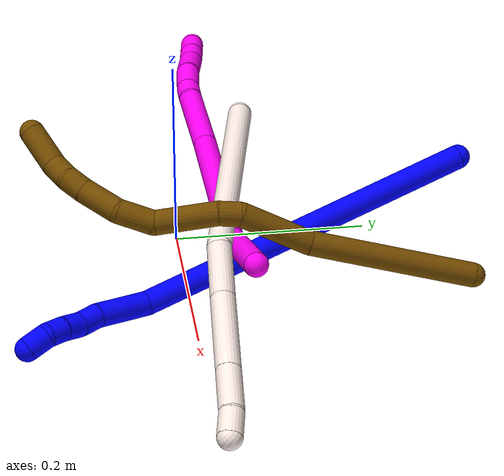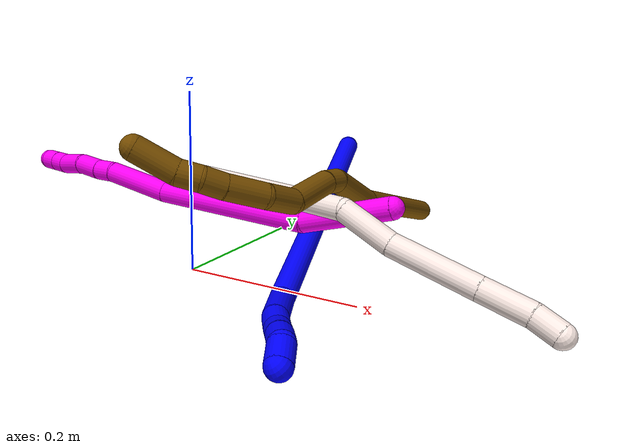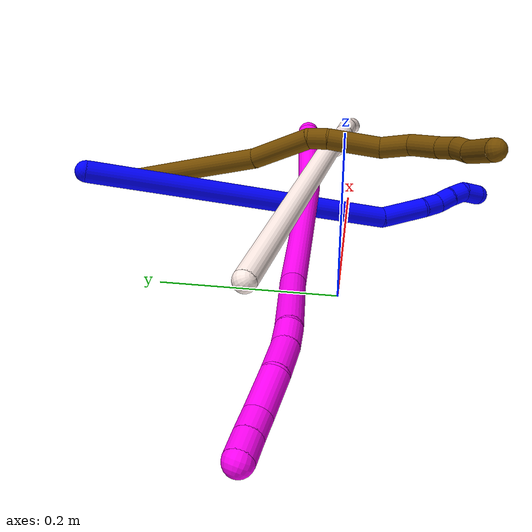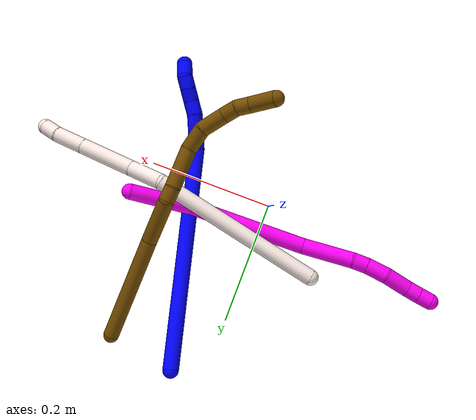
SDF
<sdf version="1.7">
 <world name="default">
  <model name="photoneo_s_sensor">
   <static>1</static>
   <pose>0 0 2 1.57079 1.57079 3.14159</pose>
   <link name="link">
    <inertial><mass>0.1</mass></inertial>
    <sensor name="sensor" type="depth">
     <update_rate>30</update_rate>
     <camera>
      <horizontal_fov>1.22</horizontal_fov>
      <image><width>1920</width><height>1200</height><format>B8G8R8</format></image>
      <clip><near>0.1</near><far>4</far></clip>
      <depth_camera><output>points</output></depth_camera>
     </camera>
     <plugin name="camera_plugin" filename="libgazebo_ros_depth_camera.so">
      <baseline>0.2</baseline>
      <alwaysOn>1</alwaysOn>
      <updateRate>0.0</updateRate>
      <cameraName>camera_ir</cameraName>
      <imageTopicName>/camera/color/image_raw</imageTopicName>
      <cameraInfoTopicName>/camera/color/camera_info</cameraInfoTopicName>
      <depthImageTopicName>/camera/depth/image_raw</depthImageTopicName>
      <depthImageCameraInfoTopicName>/camera/depth/camera_info</depthImageCameraInfoTopicName>
      <pointCloudTopicName>/camera/depth/points</pointCloudTopicName>
      <frameName>fr_optical</frameName>
      <pointCloudCutoff>0.1</pointCloudCutoff>
      <pointCloudCutoffMax>2.0</pointCloudCutoffMax>
      <distortionK1>0</distortionK1>
      <distortionK2>0</distortionK2>
      <distortionK3>0</distortionK3>
      <distortionT1>0</distortionT1>
      <distortionT2>0</distortionT2>
      <CxPrime>0</CxPrime>
      <Cx>0</Cx>
      <Cy>0</Cy>
      <focalLength>0</focalLength>
      <hackBaseline>0</hackBaseline>
     </plugin>
    </sensor>
   </link>
  </model>
  <model name="bin">
   <static>1</static>
   <link name="bottom">
    <collision name="collision-bottom">
     <pose>0 0 -0.01 0 -0 0</pose>
     <geometry><box><size>0.8 0.6 0.02</size></box></geometry>
     <surface>
      <friction><ode><mu>100</mu><mu2>100</mu2></ode></friction>
      <contact><collide_bitmask>65535</collide_bitmask></contact>
     </surface>
    </collision>
   </link>
   <link name="west_wall">
    <collision name="collision-west_wall">
     <pose>-0.41 0 0.1 0 -0 0</pose>
     <geometry><box><size>0.02 0.6 0.2</size></box></geometry>
     <surface>
      <friction><ode><mu>100</mu><mu2>100</mu2></ode></friction>
      <contact><collide_bitmask>65535</collide_bitmask></contact>
     </surface>
    </collision>
   </link>
   <link name="east_wall">
    <collision name="collision-east_wall">
     <pose>0.41 0 0.1 0 -0 0</pose>
     <geometry><box><size>0.02 0.6 0.2</size></box></geometry>
     <surface>
      <friction><ode><mu>100</mu><mu2>100</mu2></ode></friction>
      <contact><collide_bitmask>65535</collide_bitmask></contact>
     </surface>
    </collision>
   </link>
   <link name="south_wall">
    <collision name="collision-south_wall">
     <pose>0 -0.31 0.1 0 -0 0</pose>
     <geometry><box><size>0.8 0.02 0.2</size></box></geometry>
     <surface>
      <friction><ode><mu>100</mu><mu2>100</mu2></ode></friction>
      <contact><collide_bitmask>65535</collide_bitmask></contact>
     </surface>
    </collision>
   </link>
   <link name="north_wall">
    <collision name="collision-north_wall">
     <pose>0 0.31 0.1 0 -0 0</pose>
     <geometry><box><size>0.8 0.02 0.2</size></box></geometry>
     <surface>
      <friction><ode><mu>100</mu><mu2>100</mu2></ode></friction>
      <contact><collide_bitmask>65535</collide_bitmask></contact>
     </surface>
    </collision>
   </link>
  </model>
  <model name="1">
   <static>0</static>
   <link name="1">
    <collision name="collision-cylinder-e_1_1_4">
     <pose>0.021454 -0.176658 0.013399 1.49509 0.120507 0.111732</pose>
     <geometry><cylinder><radius>0.0125</radius><length>0.35692</length></cylinder></geometry>
     <surface>
      <friction><ode><mu>1.16</mu><mu2>1.16</mu2><slip1>0</slip1><slip2>0</slip2></ode></friction>
      <contact><ode><kp>1e+06</kp><kd>1</kd><max_vel>0</max_vel><min_depth>0.001</min_depth></ode></contact>
     </surface>
    </collision>
    <visual name="visual-cylinder-e_1_1_4">
     <pose>0.021454 -0.176658 0.013399 1.49509 0.120507 0.111732</pose>
     <geometry><cylinder><radius>0.0125</radius><length>0.35692</length></cylinder></geometry>
     <material><ambient>0 0 1 1</ambient></material>
    </visual>
    <collision name="collision-cylinder-e_2_4_5">
     <pose>0.054496 -0.377655 0.034393 1.26837 0.426615 0.315985</pose>
     <geometry><cylinder><radius>0.0125</radius><length>0.056012</length></cylinder></geometry>
     <surface>
      <friction><ode><mu>1.16</mu><mu2>1.16</mu2><slip1>0</slip1><slip2>0</slip2></ode></friction>
      <contact><ode><kp>1e+06</kp><kd>1</kd><max_vel>0</max_vel><min_depth>0.001</min_depth></ode></contact>
     </surface>
    </collision>
    <visual name="visual-cylinder-e_2_4_5">
     <pose>0.054496 -0.377655 0.034393 1.26837 0.426615 0.315985</pose>
     <geometry><cylinder><radius>0.0125</radius><length>0.056012</length></cylinder></geometry>
     <material><ambient>0 0 1 1</ambient></material>
    </visual>
    <collision name="collision-cylinder-e_3_5_6">
     <pose>0.071962 -0.411629 0.042838 1.48263 0.546025 0.501884</pose>
     <geometry><cylinder><radius>0.0125</radius><length>0.022635</length></cylinder></geometry>
     <surface>
      <friction><ode><mu>1.16</mu><mu2>1.16</mu2><slip1>0</slip1><slip2>0</slip2></ode></friction>
      <contact><ode><kp>1e+06</kp><kd>1</kd><max_vel>0</max_vel><min_depth>0.001</min_depth></ode></contact>
     </surface>
    </collision>
    <visual name="visual-cylinder-e_3_5_6">
     <pose>0.071962 -0.411629 0.042838 1.48263 0.546025 0.501884</pose>
     <geometry><cylinder><radius>0.0125</radius><length>0.022635</length></cylinder></geometry>
     <material><ambient>0 0 1 1</ambient></material>
    </visual>
    <collision name="collision-cylinder-e_4_6_7">
     <pose>0.084239 -0.429139 0.046351 1.24488 0.656021 0.47903</pose>
     <geometry><cylinder><radius>0.0125</radius><length>0.020984</length></cylinder></geometry>
     <surface>
      <friction><ode><mu>1.16</mu><mu2>1.16</mu2><slip1>0</slip1><slip2>0</slip2></ode></friction>
      <contact><ode><kp>1e+06</kp><kd>1</kd><max_vel>0</max_vel><min_depth>0.001</min_depth></ode></contact>
     </surface>
    </collision>
    <visual name="visual-cylinder-e_4_6_7">
     <pose>0.084239 -0.429139 0.046351 1.24488 0.656021 0.47903</pose>
     <geometry><cylinder><radius>0.0125</radius><length>0.020984</length></cylinder></geometry>
     <material><ambient>0 0 1 1</ambient></material>
    </visual>
    <collision name="collision-cylinder-e_5_7_8">
     <pose>0.096273 -0.445211 0.050552 1.38517 0.594268 0.497574</pose>
     <geometry><cylinder><radius>0.0125</radius><length>0.020128</length></cylinder></geometry>
     <surface>
      <friction><ode><mu>1.16</mu><mu2>1.16</mu2><slip1>0</slip1><slip2>0</slip2></ode></friction>
      <contact><ode><kp>1e+06</kp><kd>1</kd><max_vel>0</max_vel><min_depth>0.001</min_depth></ode></contact>
     </surface>
    </collision>
    <visual name="visual-cylinder-e_5_7_8">
     <pose>0.096273 -0.445211 0.050552 1.38517 0.594268 0.497574</pose>
     <geometry><cylinder><radius>0.0125</radius><length>0.020128</length></cylinder></geometry>
     <material><ambient>0 0 1 1</ambient></material>
    </visual>
    <collision name="collision-cylinder-e_6_8_2">
     <pose>0.104071 -0.464807 0.05094 1.67141 0.186524 0.20617</pose>
     <geometry><cylinder><radius>0.0125</radius><length>0.023321</length></cylinder></geometry>
     <surface>
      <friction><ode><mu>1.16</mu><mu2>1.16</mu2><slip1>0</slip1><slip2>0</slip2></ode></friction>
      <contact><ode><kp>1e+06</kp><kd>1</kd><max_vel>0</max_vel><min_depth>0.001</min_depth></ode></contact>
     </surface>
    </collision>
    <visual name="visual-cylinder-e_6_8_2">
     <pose>0.104071 -0.464807 0.05094 1.67141 0.186524 0.20617</pose>
     <geometry><cylinder><radius>0.0125</radius><length>0.023321</length></cylinder></geometry>
     <material><ambient>0 0 1 1</ambient></material>
    </visual>
    <collision name="collision-sphere-2">
     <pose>0.106233 -0.476207 0.04979 0 -0 0</pose>
     <geometry><sphere><radius>0.0125</radius></sphere></geometry>
     <surface>
      <friction><ode><mu>1.16</mu><mu2>1.16</mu2><slip1>0</slip1><slip2>0</slip2></ode></friction>
      <contact><ode><kp>1e+06</kp><kd>1</kd><max_vel>0</max_vel><min_depth>0.001</min_depth></ode></contact>
     </surface>
    </collision>
    <visual name="visual-sphere-2">
     <pose>0.106233 -0.476207 0.04979 0 -0 0</pose>
     <geometry><sphere><radius>0.0125</radius></sphere></geometry>
     <material><ambient>0 0 1 1</ambient></material>
    </visual>
    <collision name="collision-sphere-4">
     <pose>0.042907 -0.353316 0.026799 0 -0 0</pose>
     <geometry><sphere><radius>0.0125</radius></sphere></geometry>
     <surface>
      <friction><ode><mu>1.16</mu><mu2>1.16</mu2><slip1>0</slip1><slip2>0</slip2></ode></friction>
      <contact><ode><kp>1e+06</kp><kd>1</kd><max_vel>0</max_vel><min_depth>0.001</min_depth></ode></contact>
     </surface>
    </collision>
    <visual name="visual-sphere-4">
     <pose>0.042907 -0.353316 0.026799 0 -0 0</pose>
     <geometry><sphere><radius>0.0125</radius></sphere></geometry>
     <material><ambient>0 0 1 1</ambient></material>
    </visual>
    <collision name="collision-sphere-1">
     <geometry><sphere><radius>0.0125</radius></sphere></geometry>
     <surface>
      <friction><ode><mu>1.16</mu><mu2>1.16</mu2><slip1>0</slip1><slip2>0</slip2></ode></friction>
      <contact><ode><kp>1e+06</kp><kd>1</kd><max_vel>0</max_vel><min_depth>0.001</min_depth></ode></contact>
     </surface>
    </collision>
    <visual name="visual-sphere-1">
     <geometry><sphere><radius>0.0125</radius></sphere></geometry>
     <material><ambient>0 0 1 1</ambient></material>
    </visual>
    <collision name="collision-sphere-8">
     <pose>0.101908 -0.453406 0.052091 0 -0 0</pose>
     <geometry><sphere><radius>0.0125</radius></sphere></geometry>
     <surface>
      <friction><ode><mu>1.16</mu><mu2>1.16</mu2><slip1>0</slip1><slip2>0</slip2></ode></friction>
      <contact><ode><kp>1e+06</kp><kd>1</kd><max_vel>0</max_vel><min_depth>0.001</min_depth></ode></contact>
     </surface>
    </collision>
    <visual name="visual-sphere-8">
     <pose>0.101908 -0.453406 0.052091 0 -0 0</pose>
     <geometry><sphere><radius>0.0125</radius></sphere></geometry>
     <material><ambient>0 0 1 1</ambient></material>
    </visual>
    <collision name="collision-sphere-5">
     <pose>0.066085 -0.401994 0.041986 0 -0 0</pose>
     <geometry><sphere><radius>0.0125</radius></sphere></geometry>
     <surface>
      <friction><ode><mu>1.16</mu><mu2>1.16</mu2><slip1>0</slip1><slip2>0</slip2></ode></friction>
      <contact><ode><kp>1e+06</kp><kd>1</kd><max_vel>0</max_vel><min_depth>0.001</min_depth></ode></contact>
     </surface>
    </collision>
    <visual name="visual-sphere-5">
     <pose>0.066085 -0.401994 0.041986 0 -0 0</pose>
     <geometry><sphere><radius>0.0125</radius></sphere></geometry>
     <material><ambient>0 0 1 1</ambient></material>
    </visual>
    <collision name="collision-sphere-6">
     <pose>0.077839 -0.421263 0.04369 0 -0 0</pose>
     <geometry><sphere><radius>0.0125</radius></sphere></geometry>
     <surface>
      <friction><ode><mu>1.16</mu><mu2>1.16</mu2><slip1>0</slip1><slip2>0</slip2></ode></friction>
      <contact><ode><kp>1e+06</kp><kd>1</kd><max_vel>0</max_vel><min_depth>0.001</min_depth></ode></contact>
     </surface>
    </collision>
    <visual name="visual-sphere-6">
     <pose>0.077839 -0.421263 0.04369 0 -0 0</pose>
     <geometry><sphere><radius>0.0125</radius></sphere></geometry>
     <material><ambient>0 0 1 1</ambient></material>
    </visual>
    <collision name="collision-sphere-7">
     <pose>0.090638 -0.437016 0.049013 0 -0 0</pose>
     <geometry><sphere><radius>0.0125</radius></sphere></geometry>
     <surface>
      <friction><ode><mu>1.16</mu><mu2>1.16</mu2><slip1>0</slip1><slip2>0</slip2></ode></friction>
      <contact><ode><kp>1e+06</kp><kd>1</kd><max_vel>0</max_vel><min_depth>0.001</min_depth></ode></contact>
     </surface>
    </collision>
    <visual name="visual-sphere-7">
     <pose>0.090638 -0.437016 0.049013 0 -0 0</pose>
     <geometry><sphere><radius>0.0125</radius></sphere></geometry>
     <material><ambient>0 0 1 1</ambient></material>
    </visual>
    <inertial>
     <pose>0.036942 -0.244659 0.021713 0 -0 0</pose>
     <mass>0.5</mass>
     <inertia>
      <ixx>0.004208</ixx>
      <ixy>0</ixy>
      <ixz>0</ixz>
      <iyy>0.000736</iyy>
      <iyz>0</iyz>
      <izz>0.003322</izz>
     </inertia>
    </inertial>
   </link>
   <pose>0.054432 0.287639 0.106319 0.447075 -0.473723 -0.028666</pose>
  </model>
  <model name="10">
   <static>0</static>
   <link name="10">
    <collision name="collision-cylinder-e_1_1_4">
     <pose>-0.023263 0.00524 0.044084 -0.11832 -0.482673 0.029155</pose>
     <geometry><cylinder><radius>0.0125</radius><length>0.10024</length></cylinder></geometry>
     <surface>
      <friction><ode><mu>1.16</mu><mu2>1.16</mu2><slip1>0</slip1><slip2>0</slip2></ode></friction>
      <contact><ode><kp>1e+06</kp><kd>1</kd><max_vel>0</max_vel><min_depth>0.001</min_depth></ode></contact>
     </surface>
    </collision>
    <visual name="visual-cylinder-e_1_1_4">
     <pose>-0.023263 0.00524 0.044084 -0.11832 -0.482673 0.029155</pose>
     <geometry><cylinder><radius>0.0125</radius><length>0.10024</length></cylinder></geometry>
     <material><ambient>1 0 0.964706 1</ambient></material>
    </visual>
    <collision name="collision-cylinder-e_2_4_5">
     <pose>-0.105029 -0.0033 0.158284 0.194067 -0.686044 -0.069499</pose>
     <geometry><cylinder><radius>0.0125</radius><length>0.184704</length></cylinder></geometry>
     <surface>
      <friction><ode><mu>1.16</mu><mu2>1.16</mu2><slip1>0</slip1><slip2>0</slip2></ode></friction>
      <contact><ode><kp>1e+06</kp><kd>1</kd><max_vel>0</max_vel><min_depth>0.001</min_depth></ode></contact>
     </surface>
    </collision>
    <visual name="visual-cylinder-e_2_4_5">
     <pose>-0.105029 -0.0033 0.158284 0.194067 -0.686044 -0.069499</pose>
     <geometry><cylinder><radius>0.0125</radius><length>0.184704</length></cylinder></geometry>
     <material><ambient>1 0 0.964706 1</ambient></material>
    </visual>
    <collision name="collision-cylinder-e_3_5_6">
     <pose>-0.193345 -0.024444 0.25369 0.283324 -0.847179 -0.128431</pose>
     <geometry><cylinder><radius>0.0125</radius><length>0.079562</length></cylinder></geometry>
     <surface>
      <friction><ode><mu>1.16</mu><mu2>1.16</mu2><slip1>0</slip1><slip2>0</slip2></ode></friction>
      <contact><ode><kp>1e+06</kp><kd>1</kd><max_vel>0</max_vel><min_depth>0.001</min_depth></ode></contact>
     </surface>
    </collision>
    <visual name="visual-cylinder-e_3_5_6">
     <pose>-0.193345 -0.024444 0.25369 0.283324 -0.847179 -0.128431</pose>
     <geometry><cylinder><radius>0.0125</radius><length>0.079562</length></cylinder></geometry>
     <material><ambient>1 0 0.964706 1</ambient></material>
    </visual>
    <collision name="collision-cylinder-e_4_6_7">
     <pose>-0.229979 -0.033498 0.287941 0.186524 -0.642173 -0.062197</pose>
     <geometry><cylinder><radius>0.0125</radius><length>0.022778</length></cylinder></geometry>
     <surface>
      <friction><ode><mu>1.16</mu><mu2>1.16</mu2><slip1>0</slip1><slip2>0</slip2></ode></friction>
      <contact><ode><kp>1e+06</kp><kd>1</kd><max_vel>0</max_vel><min_depth>0.001</min_depth></ode></contact>
     </surface>
    </collision>
    <visual name="visual-cylinder-e_4_6_7">
     <pose>-0.229979 -0.033498 0.287941 0.186524 -0.642173 -0.062197</pose>
     <geometry><cylinder><radius>0.0125</radius><length>0.022778</length></cylinder></geometry>
     <material><ambient>1 0 0.964706 1</ambient></material>
    </visual>
    <collision name="collision-cylinder-e_5_7_8">
     <pose>-0.246643 -0.039837 0.309541 0.352429 -0.63116 -0.11614</pose>
     <geometry><cylinder><radius>0.0125</radius><length>0.033358</length></cylinder></geometry>
     <surface>
      <friction><ode><mu>1.16</mu><mu2>1.16</mu2><slip1>0</slip1><slip2>0</slip2></ode></friction>
      <contact><ode><kp>1e+06</kp><kd>1</kd><max_vel>0</max_vel><min_depth>0.001</min_depth></ode></contact>
     </surface>
    </collision>
    <visual name="visual-cylinder-e_5_7_8">
     <pose>-0.246643 -0.039837 0.309541 0.352429 -0.63116 -0.11614</pose>
     <geometry><cylinder><radius>0.0125</radius><length>0.033358</length></cylinder></geometry>
     <material><ambient>1 0 0.964706 1</ambient></material>
    </visual>
    <collision name="collision-cylinder-e_6_8_9">
     <pose>-0.264052 -0.048797 0.339308 0.246601 -0.404785 -0.05085</pose>
     <geometry><cylinder><radius>0.0125</radius><length>0.038433</length></cylinder></geometry>
     <surface>
      <friction><ode><mu>1.16</mu><mu2>1.16</mu2><slip1>0</slip1><slip2>0</slip2></ode></friction>
      <contact><ode><kp>1e+06</kp><kd>1</kd><max_vel>0</max_vel><min_depth>0.001</min_depth></ode></contact>
     </surface>
    </collision>
    <visual name="visual-cylinder-e_6_8_9">
     <pose>-0.264052 -0.048797 0.339308 0.246601 -0.404785 -0.05085</pose>
     <geometry><cylinder><radius>0.0125</radius><length>0.038433</length></cylinder></geometry>
     <material><ambient>1 0 0.964706 1</ambient></material>
    </visual>
    <collision name="collision-cylinder-e_7_9_10">
     <pose>-0.276839 -0.056022 0.364617 0.342106 -0.541197 -0.095765</pose>
     <geometry><cylinder><radius>0.0125</radius><length>0.02026</length></cylinder></geometry>
     <surface>
      <friction><ode><mu>1.16</mu><mu2>1.16</mu2><slip1>0</slip1><slip2>0</slip2></ode></friction>
      <contact><ode><kp>1e+06</kp><kd>1</kd><max_vel>0</max_vel><min_depth>0.001</min_depth></ode></contact>
     </surface>
    </collision>
    <visual name="visual-cylinder-e_7_9_10">
     <pose>-0.276839 -0.056022 0.364617 0.342106 -0.541197 -0.095765</pose>
     <geometry><cylinder><radius>0.0125</radius><length>0.02026</length></cylinder></geometry>
     <material><ambient>1 0 0.964706 1</ambient></material>
    </visual>
    <collision name="collision-cylinder-e_8_10_2">
     <pose>-0.287518 -0.061734 0.381109 0.324827 -0.556815 -0.093602</pose>
     <geometry><cylinder><radius>0.0125</radius><length>0.020664</length></cylinder></geometry>
     <surface>
      <friction><ode><mu>1.16</mu><mu2>1.16</mu2><slip1>0</slip1><slip2>0</slip2></ode></friction>
      <contact><ode><kp>1e+06</kp><kd>1</kd><max_vel>0</max_vel><min_depth>0.001</min_depth></ode></contact>
     </surface>
    </collision>
    <visual name="visual-cylinder-e_8_10_2">
     <pose>-0.287518 -0.061734 0.381109 0.324827 -0.556815 -0.093602</pose>
     <geometry><cylinder><radius>0.0125</radius><length>0.020664</length></cylinder></geometry>
     <material><ambient>1 0 0.964706 1</ambient></material>
    </visual>
    <collision name="collision-sphere-2">
     <pose>-0.292978 -0.064533 0.389422 0 -0 0</pose>
     <geometry><sphere><radius>0.0125</radius></sphere></geometry>
     <surface>
      <friction><ode><mu>1.16</mu><mu2>1.16</mu2><slip1>0</slip1><slip2>0</slip2></ode></friction>
      <contact><ode><kp>1e+06</kp><kd>1</kd><max_vel>0</max_vel><min_depth>0.001</min_depth></ode></contact>
     </surface>
    </collision>
    <visual name="visual-sphere-2">
     <pose>-0.292978 -0.064533 0.389422 0 -0 0</pose>
     <geometry><sphere><radius>0.0125</radius></sphere></geometry>
     <material><ambient>1 0 0.964706 1</ambient></material>
    </visual>
    <collision name="collision-sphere-10">
     <pose>-0.282058 -0.058935 0.372796 0 -0 0</pose>
     <geometry><sphere><radius>0.0125</radius></sphere></geometry>
     <surface>
      <friction><ode><mu>1.16</mu><mu2>1.16</mu2><slip1>0</slip1><slip2>0</slip2></ode></friction>
      <contact><ode><kp>1e+06</kp><kd>1</kd><max_vel>0</max_vel><min_depth>0.001</min_depth></ode></contact>
     </surface>
    </collision>
    <visual name="visual-sphere-10">
     <pose>-0.282058 -0.058935 0.372796 0 -0 0</pose>
     <geometry><sphere><radius>0.0125</radius></sphere></geometry>
     <material><ambient>1 0 0.964706 1</ambient></material>
    </visual>
    <collision name="collision-sphere-9">
     <pose>-0.27162 -0.053109 0.356438 0 -0 0</pose>
     <geometry><sphere><radius>0.0125</radius></sphere></geometry>
     <surface>
      <friction><ode><mu>1.16</mu><mu2>1.16</mu2><slip1>0</slip1><slip2>0</slip2></ode></friction>
      <contact><ode><kp>1e+06</kp><kd>1</kd><max_vel>0</max_vel><min_depth>0.001</min_depth></ode></contact>
     </surface>
    </collision>
    <visual name="visual-sphere-9">
     <pose>-0.27162 -0.053109 0.356438 0 -0 0</pose>
     <geometry><sphere><radius>0.0125</radius></sphere></geometry>
     <material><ambient>1 0 0.964706 1</ambient></material>
    </visual>
    <collision name="collision-sphere-4">
     <pose>-0.046526 0.010481 0.088167 0 -0 0</pose>
     <geometry><sphere><radius>0.0125</radius></sphere></geometry>
     <surface>
      <friction><ode><mu>1.16</mu><mu2>1.16</mu2><slip1>0</slip1><slip2>0</slip2></ode></friction>
      <contact><ode><kp>1e+06</kp><kd>1</kd><max_vel>0</max_vel><min_depth>0.001</min_depth></ode></contact>
     </surface>
    </collision>
    <visual name="visual-sphere-4">
     <pose>-0.046526 0.010481 0.088167 0 -0 0</pose>
     <geometry><sphere><radius>0.0125</radius></sphere></geometry>
     <material><ambient>1 0 0.964706 1</ambient></material>
    </visual>
    <collision name="collision-sphere-1">
     <geometry><sphere><radius>0.0125</radius></sphere></geometry>
     <surface>
      <friction><ode><mu>1.16</mu><mu2>1.16</mu2><slip1>0</slip1><slip2>0</slip2></ode></friction>
      <contact><ode><kp>1e+06</kp><kd>1</kd><max_vel>0</max_vel><min_depth>0.001</min_depth></ode></contact>
     </surface>
    </collision>
    <visual name="visual-sphere-1">
     <geometry><sphere><radius>0.0125</radius></sphere></geometry>
     <material><ambient>1 0 0.964706 1</ambient></material>
    </visual>
    <collision name="collision-sphere-8">
     <pose>-0.256485 -0.044485 0.322179 0 -0 0</pose>
     <geometry><sphere><radius>0.0125</radius></sphere></geometry>
     <surface>
      <friction><ode><mu>1.16</mu><mu2>1.16</mu2><slip1>0</slip1><slip2>0</slip2></ode></friction>
      <contact><ode><kp>1e+06</kp><kd>1</kd><max_vel>0</max_vel><min_depth>0.001</min_depth></ode></contact>
     </surface>
    </collision>
    <visual name="visual-sphere-8">
     <pose>-0.256485 -0.044485 0.322179 0 -0 0</pose>
     <geometry><sphere><radius>0.0125</radius></sphere></geometry>
     <material><ambient>1 0 0.964706 1</ambient></material>
    </visual>
    <collision name="collision-sphere-5">
     <pose>-0.163533 -0.017081 0.228401 0 -0 0</pose>
     <geometry><sphere><radius>0.0125</radius></sphere></geometry>
     <surface>
      <friction><ode><mu>1.16</mu><mu2>1.16</mu2><slip1>0</slip1><slip2>0</slip2></ode></friction>
      <contact><ode><kp>1e+06</kp><kd>1</kd><max_vel>0</max_vel><min_depth>0.001</min_depth></ode></contact>
     </surface>
    </collision>
    <visual name="visual-sphere-5">
     <pose>-0.163533 -0.017081 0.228401 0 -0 0</pose>
     <geometry><sphere><radius>0.0125</radius></sphere></geometry>
     <material><ambient>1 0 0.964706 1</ambient></material>
    </visual>
    <collision name="collision-sphere-6">
     <pose>-0.223158 -0.031807 0.278979 0 -0 0</pose>
     <geometry><sphere><radius>0.0125</radius></sphere></geometry>
     <surface>
      <friction><ode><mu>1.16</mu><mu2>1.16</mu2><slip1>0</slip1><slip2>0</slip2></ode></friction>
      <contact><ode><kp>1e+06</kp><kd>1</kd><max_vel>0</max_vel><min_depth>0.001</min_depth></ode></contact>
     </surface>
    </collision>
    <visual name="visual-sphere-6">
     <pose>-0.223158 -0.031807 0.278979 0 -0 0</pose>
     <geometry><sphere><radius>0.0125</radius></sphere></geometry>
     <material><ambient>1 0 0.964706 1</ambient></material>
    </visual>
    <collision name="collision-sphere-7">
     <pose>-0.236801 -0.035189 0.296903 0 -0 0</pose>
     <geometry><sphere><radius>0.0125</radius></sphere></geometry>
     <surface>
      <friction><ode><mu>1.16</mu><mu2>1.16</mu2><slip1>0</slip1><slip2>0</slip2></ode></friction>
      <contact><ode><kp>1e+06</kp><kd>1</kd><max_vel>0</max_vel><min_depth>0.001</min_depth></ode></contact>
     </surface>
    </collision>
    <visual name="visual-sphere-7">
     <pose>-0.236801 -0.035189 0.296903 0 -0 0</pose>
     <geometry><sphere><radius>0.0125</radius></sphere></geometry>
     <material><ambient>1 0 0.964706 1</ambient></material>
    </visual>
    <inertial>
     <pose>-0.144558 -0.016814 0.198053 0 -0 0</pose>
     <mass>0.5</mass>
     <inertia>
      <ixx>0.000478</ixx>
      <ixy>0</ixy>
      <ixz>0</ixz>
      <iyy>0.000636</iyy>
      <iyz>0</iyz>
      <izz>0.000532</izz>
     </inertia>
    </inertial>
   </link>
   <pose>0.210406 0.055757 0.089082 -2.34967 0.664836 0.725027</pose>
  </model>
  <model name="11">
   <static>0</static>
   <link name="11">
    <collision name="collision-cylinder-e_1_1_4">
     <pose>0.127129 -0.046601 0.014864 1.26202 1.2035 0.9301</pose>
     <geometry><cylinder><radius>0.0125</radius><length>0.272429</length></cylinder></geometry>
     <surface>
      <friction><ode><mu>1.16</mu><mu2>1.16</mu2><slip1>0</slip1><slip2>0</slip2></ode></friction>
      <contact><ode><kp>1e+06</kp><kd>1</kd><max_vel>0</max_vel><min_depth>0.001</min_depth></ode></contact>
     </surface>
    </collision>
    <visual name="visual-cylinder-e_1_1_4">
     <pose>0.127129 -0.046601 0.014864 1.26202 1.2035 0.9301</pose>
     <geometry><cylinder><radius>0.0125</radius><length>0.272429</length></cylinder></geometry>
     <material><ambient>1 0.933333 0.909804 1</ambient></material>
    </visual>
    <collision name="collision-cylinder-e_2_4_5">
     <pose>0.279916 -0.095741 0.044058 0.175385 1.05485 0.102329</pose>
     <geometry><cylinder><radius>0.0125</radius><length>0.058994</length></cylinder></geometry>
     <surface>
      <friction><ode><mu>1.16</mu><mu2>1.16</mu2><slip1>0</slip1><slip2>0</slip2></ode></friction>
      <contact><ode><kp>1e+06</kp><kd>1</kd><max_vel>0</max_vel><min_depth>0.001</min_depth></ode></contact>
     </surface>
    </collision>
    <visual name="visual-cylinder-e_2_4_5">
     <pose>0.279916 -0.095741 0.044058 0.175385 1.05485 0.102329</pose>
     <geometry><cylinder><radius>0.0125</radius><length>0.058994</length></cylinder></geometry>
     <material><ambient>1 0.933333 0.909804 1</ambient></material>
    </visual>
    <collision name="collision-cylinder-e_3_5_6">
     <pose>0.346723 -0.109031 0.075652 0.556954 1.11174 0.351552</pose>
     <geometry><cylinder><radius>0.0125</radius><length>0.091803</length></cylinder></geometry>
     <surface>
      <friction><ode><mu>1.16</mu><mu2>1.16</mu2><slip1>0</slip1><slip2>0</slip2></ode></friction>
      <contact><ode><kp>1e+06</kp><kd>1</kd><max_vel>0</max_vel><min_depth>0.001</min_depth></ode></contact>
     </surface>
    </collision>
    <visual name="visual-cylinder-e_3_5_6">
     <pose>0.346723 -0.109031 0.075652 0.556954 1.11174 0.351552</pose>
     <geometry><cylinder><radius>0.0125</radius><length>0.091803</length></cylinder></geometry>
     <material><ambient>1 0.933333 0.909804 1</ambient></material>
    </visual>
    <collision name="collision-cylinder-e_4_6_7">
     <pose>0.410151 -0.125731 0.102166 0.571558 1.1123 0.361296</pose>
     <geometry><cylinder><radius>0.0125</radius><length>0.04969</length></cylinder></geometry>
     <surface>
      <friction><ode><mu>1.16</mu><mu2>1.16</mu2><slip1>0</slip1><slip2>0</slip2></ode></friction>
      <contact><ode><kp>1e+06</kp><kd>1</kd><max_vel>0</max_vel><min_depth>0.001</min_depth></ode></contact>
     </surface>
    </collision>
    <visual name="visual-cylinder-e_4_6_7">
     <pose>0.410151 -0.125731 0.102166 0.571558 1.1123 0.361296</pose>
     <geometry><cylinder><radius>0.0125</radius><length>0.04969</length></cylinder></geometry>
     <material><ambient>1 0.933333 0.909804 1</ambient></material>
    </visual>
    <collision name="collision-cylinder-e_5_7_2">
     <pose>0.44499 -0.132427 0.11642 0.148419 1.18776 0.100311</pose>
     <geometry><cylinder><radius>0.0125</radius><length>0.027084</length></cylinder></geometry>
     <surface>
      <friction><ode><mu>1.16</mu><mu2>1.16</mu2><slip1>0</slip1><slip2>0</slip2></ode></friction>
      <contact><ode><kp>1e+06</kp><kd>1</kd><max_vel>0</max_vel><min_depth>0.001</min_depth></ode></contact>
     </surface>
    </collision>
    <visual name="visual-cylinder-e_5_7_2">
     <pose>0.44499 -0.132427 0.11642 0.148419 1.18776 0.100311</pose>
     <geometry><cylinder><radius>0.0125</radius><length>0.027084</length></cylinder></geometry>
     <material><ambient>1 0.933333 0.909804 1</ambient></material>
    </visual>
    <collision name="collision-sphere-2">
     <pose>0.457551 -0.133176 0.121426 0 -0 0</pose>
     <geometry><sphere><radius>0.0125</radius></sphere></geometry>
     <surface>
      <friction><ode><mu>1.16</mu><mu2>1.16</mu2><slip1>0</slip1><slip2>0</slip2></ode></friction>
      <contact><ode><kp>1e+06</kp><kd>1</kd><max_vel>0</max_vel><min_depth>0.001</min_depth></ode></contact>
     </surface>
    </collision>
    <visual name="visual-sphere-2">
     <pose>0.457551 -0.133176 0.121426 0 -0 0</pose>
     <geometry><sphere><radius>0.0125</radius></sphere></geometry>
     <material><ambient>1 0.933333 0.909804 1</ambient></material>
    </visual>
    <collision name="collision-sphere-7">
     <pose>0.43243 -0.131679 0.111415 0 -0 0</pose>
     <geometry><sphere><radius>0.0125</radius></sphere></geometry>
     <surface>
      <friction><ode><mu>1.16</mu><mu2>1.16</mu2><slip1>0</slip1><slip2>0</slip2></ode></friction>
      <contact><ode><kp>1e+06</kp><kd>1</kd><max_vel>0</max_vel><min_depth>0.001</min_depth></ode></contact>
     </surface>
    </collision>
    <visual name="visual-sphere-7">
     <pose>0.43243 -0.131679 0.111415 0 -0 0</pose>
     <geometry><sphere><radius>0.0125</radius></sphere></geometry>
     <material><ambient>1 0.933333 0.909804 1</ambient></material>
    </visual>
    <collision name="collision-sphere-6">
     <pose>0.387872 -0.119782 0.092917 0 -0 0</pose>
     <geometry><sphere><radius>0.0125</radius></sphere></geometry>
     <surface>
      <friction><ode><mu>1.16</mu><mu2>1.16</mu2><slip1>0</slip1><slip2>0</slip2></ode></friction>
      <contact><ode><kp>1e+06</kp><kd>1</kd><max_vel>0</max_vel><min_depth>0.001</min_depth></ode></contact>
     </surface>
    </collision>
    <visual name="visual-sphere-6">
     <pose>0.387872 -0.119782 0.092917 0 -0 0</pose>
     <geometry><sphere><radius>0.0125</radius></sphere></geometry>
     <material><ambient>1 0.933333 0.909804 1</ambient></material>
    </visual>
    <collision name="collision-sphere-5">
     <pose>0.305573 -0.09828 0.058387 0 -0 0</pose>
     <geometry><sphere><radius>0.0125</radius></sphere></geometry>
     <surface>
      <friction><ode><mu>1.16</mu><mu2>1.16</mu2><slip1>0</slip1><slip2>0</slip2></ode></friction>
      <contact><ode><kp>1e+06</kp><kd>1</kd><max_vel>0</max_vel><min_depth>0.001</min_depth></ode></contact>
     </surface>
    </collision>
    <visual name="visual-sphere-5">
     <pose>0.305573 -0.09828 0.058387 0 -0 0</pose>
     <geometry><sphere><radius>0.0125</radius></sphere></geometry>
     <material><ambient>1 0.933333 0.909804 1</ambient></material>
    </visual>
    <collision name="collision-sphere-1">
     <geometry><sphere><radius>0.0125</radius></sphere></geometry>
     <surface>
      <friction><ode><mu>1.16</mu><mu2>1.16</mu2><slip1>0</slip1><slip2>0</slip2></ode></friction>
      <contact><ode><kp>1e+06</kp><kd>1</kd><max_vel>0</max_vel><min_depth>0.001</min_depth></ode></contact>
     </surface>
    </collision>
    <visual name="visual-sphere-1">
     <geometry><sphere><radius>0.0125</radius></sphere></geometry>
     <material><ambient>1 0.933333 0.909804 1</ambient></material>
    </visual>
    <collision name="collision-sphere-4">
     <pose>0.254258 -0.093201 0.029729 0 -0 0</pose>
     <geometry><sphere><radius>0.0125</radius></sphere></geometry>
     <surface>
      <friction><ode><mu>1.16</mu><mu2>1.16</mu2><slip1>0</slip1><slip2>0</slip2></ode></friction>
      <contact><ode><kp>1e+06</kp><kd>1</kd><max_vel>0</max_vel><min_depth>0.001</min_depth></ode></contact>
     </surface>
    </collision>
    <visual name="visual-sphere-4">
     <pose>0.254258 -0.093201 0.029729 0 -0 0</pose>
     <geometry><sphere><radius>0.0125</radius></sphere></geometry>
     <material><ambient>1 0.933333 0.909804 1</ambient></material>
    </visual>
    <inertial>
     <pose>0.230819 -0.076374 0.043647 0 -0 0</pose>
     <mass>0.5</mass>
     <inertia>
      <ixx>0.000945</ixx>
      <ixy>0</ixy>
      <ixz>0</ixz>
      <iyy>0.002107</iyy>
      <iyz>0</iyz>
      <izz>-0.001064</izz>
     </inertia>
    </inertial>
   </link>
   <pose>-0.095453 0.081208 0.094242 -2.36485 0.193247 -0.534213</pose>
  </model>
  <model name="12">
   <static>0</static>
   <link name="12">
    <collision name="collision-cylinder-e_1_1_4">
     <pose>-0.03983 -0.023508 -0.07305 2.83025 -0.478756 -1.99865</pose>
     <geometry><cylinder><radius>0.0125</radius><length>0.172919</length></cylinder></geometry>
     <surface>
      <friction><ode><mu>1.16</mu><mu2>1.16</mu2><slip1>0</slip1><slip2>0</slip2></ode></friction>
      <contact><ode><kp>1e+06</kp><kd>1</kd><max_vel>0</max_vel><min_depth>0.001</min_depth></ode></contact>
     </surface>
    </collision>
    <visual name="visual-cylinder-e_1_1_4">
     <pose>-0.03983 -0.023508 -0.07305 2.83025 -0.478756 -1.99865</pose>
     <geometry><cylinder><radius>0.0125</radius><length>0.172919</length></cylinder></geometry>
     <material><ambient>0.466667 0.301961 0 1</ambient></material>
    </visual>
    <collision name="collision-cylinder-e_2_4_5">
     <pose>-0.09606 -0.050023 -0.180202 3.05366 -0.446755 -2.75898</pose>
     <geometry><cylinder><radius>0.0125</radius><length>0.075922</length></cylinder></geometry>
     <surface>
      <friction><ode><mu>1.16</mu><mu2>1.16</mu2><slip1>0</slip1><slip2>0</slip2></ode></friction>
      <contact><ode><kp>1e+06</kp><kd>1</kd><max_vel>0</max_vel><min_depth>0.001</min_depth></ode></contact>
     </surface>
    </collision>
    <visual name="visual-cylinder-e_2_4_5">
     <pose>-0.09606 -0.050023 -0.180202 3.05366 -0.446755 -2.75898</pose>
     <geometry><cylinder><radius>0.0125</radius><length>0.075922</length></cylinder></geometry>
     <material><ambient>0.466667 0.301961 0 1</ambient></material>
    </visual>
    <collision name="collision-cylinder-e_3_5_6">
     <pose>-0.117108 -0.058207 -0.223339 2.62113 -0.419789 -1.34955</pose>
     <geometry><cylinder><radius>0.0125</radius><length>0.022805</length></cylinder></geometry>
     <surface>
      <friction><ode><mu>1.16</mu><mu2>1.16</mu2><slip1>0</slip1><slip2>0</slip2></ode></friction>
      <contact><ode><kp>1e+06</kp><kd>1</kd><max_vel>0</max_vel><min_depth>0.001</min_depth></ode></contact>
     </surface>
    </collision>
    <visual name="visual-cylinder-e_3_5_6">
     <pose>-0.117108 -0.058207 -0.223339 2.62113 -0.419789 -1.34955</pose>
     <geometry><cylinder><radius>0.0125</radius><length>0.022805</length></cylinder></geometry>
     <material><ambient>0.466667 0.301961 0 1</ambient></material>
    </visual>
    <collision name="collision-cylinder-e_4_6_7">
     <pose>-0.135331 -0.082591 -0.253551 2.40501 -0.443308 -1.05711</pose>
     <geometry><cylinder><radius>0.0125</radius><length>0.063299</length></cylinder></geometry>
     <surface>
      <friction><ode><mu>1.16</mu><mu2>1.16</mu2><slip1>0</slip1><slip2>0</slip2></ode></friction>
      <contact><ode><kp>1e+06</kp><kd>1</kd><max_vel>0</max_vel><min_depth>0.001</min_depth></ode></contact>
     </surface>
    </collision>
    <visual name="visual-cylinder-e_4_6_7">
     <pose>-0.135331 -0.082591 -0.253551 2.40501 -0.443308 -1.05711</pose>
     <geometry><cylinder><radius>0.0125</radius><length>0.063299</length></cylinder></geometry>
     <material><ambient>0.466667 0.301961 0 1</ambient></material>
    </visual>
    <collision name="collision-cylinder-e_5_7_8">
     <pose>-0.15399 -0.106593 -0.292104 2.87223 -0.274874 -1.59131</pose>
     <geometry><cylinder><radius>0.0125</radius><length>0.037455</length></cylinder></geometry>
     <surface>
      <friction><ode><mu>1.16</mu><mu2>1.16</mu2><slip1>0</slip1><slip2>0</slip2></ode></friction>
      <contact><ode><kp>1e+06</kp><kd>1</kd><max_vel>0</max_vel><min_depth>0.001</min_depth></ode></contact>
     </surface>
    </collision>
    <visual name="visual-cylinder-e_5_7_8">
     <pose>-0.15399 -0.106593 -0.292104 2.87223 -0.274874 -1.59131</pose>
     <geometry><cylinder><radius>0.0125</radius><length>0.037455</length></cylinder></geometry>
     <material><ambient>0.466667 0.301961 0 1</ambient></material>
    </visual>
    <collision name="collision-cylinder-e_6_8_9">
     <pose>-0.156624 -0.115847 -0.329174 2.91905 0.12065 0.991132</pose>
     <geometry><cylinder><radius>0.0125</radius><length>0.040683</length></cylinder></geometry>
     <surface>
      <friction><ode><mu>1.16</mu><mu2>1.16</mu2><slip1>0</slip1><slip2>0</slip2></ode></friction>
      <contact><ode><kp>1e+06</kp><kd>1</kd><max_vel>0</max_vel><min_depth>0.001</min_depth></ode></contact>
     </surface>
    </collision>
    <visual name="visual-cylinder-e_6_8_9">
     <pose>-0.156624 -0.115847 -0.329174 2.91905 0.12065 0.991132</pose>
     <geometry><cylinder><radius>0.0125</radius><length>0.040683</length></cylinder></geometry>
     <material><ambient>0.466667 0.301961 0 1</ambient></material>
    </visual>
    <collision name="collision-cylinder-e_7_9_10">
     <pose>-0.152651 -0.12173 -0.359754 3.01127 0.138011 1.62822</pose>
     <geometry><cylinder><radius>0.0125</radius><length>0.022165</length></cylinder></geometry>
     <surface>
      <friction><ode><mu>1.16</mu><mu2>1.16</mu2><slip1>0</slip1><slip2>0</slip2></ode></friction>
      <contact><ode><kp>1e+06</kp><kd>1</kd><max_vel>0</max_vel><min_depth>0.001</min_depth></ode></contact>
     </surface>
    </collision>
    <visual name="visual-cylinder-e_7_9_10">
     <pose>-0.152651 -0.12173 -0.359754 3.01127 0.138011 1.62822</pose>
     <geometry><cylinder><radius>0.0125</radius><length>0.022165</length></cylinder></geometry>
     <material><ambient>0.466667 0.301961 0 1</ambient></material>
    </visual>
    <collision name="collision-cylinder-e_8_10_11">
     <pose>-0.14646 -0.124687 -0.380544 2.9883 0.435747 2.47381</pose>
     <geometry><cylinder><radius>0.0125</radius><length>0.022114</length></cylinder></geometry>
     <surface>
      <friction><ode><mu>1.16</mu><mu2>1.16</mu2><slip1>0</slip1><slip2>0</slip2></ode></friction>
      <contact><ode><kp>1e+06</kp><kd>1</kd><max_vel>0</max_vel><min_depth>0.001</min_depth></ode></contact>
     </surface>
    </collision>
    <visual name="visual-cylinder-e_8_10_11">
     <pose>-0.14646 -0.124687 -0.380544 2.9883 0.435747 2.47381</pose>
     <geometry><cylinder><radius>0.0125</radius><length>0.022114</length></cylinder></geometry>
     <material><ambient>0.466667 0.301961 0 1</ambient></material>
    </visual>
    <collision name="collision-cylinder-e_9_11_2">
     <pose>-0.134166 -0.124115 -0.410247 -3.03578 0.365867 -2.58401</pose>
     <geometry><cylinder><radius>0.0125</radius><length>0.042638</length></cylinder></geometry>
     <surface>
      <friction><ode><mu>1.16</mu><mu2>1.16</mu2><slip1>0</slip1><slip2>0</slip2></ode></friction>
      <contact><ode><kp>1e+06</kp><kd>1</kd><max_vel>0</max_vel><min_depth>0.001</min_depth></ode></contact>
     </surface>
    </collision>
    <visual name="visual-cylinder-e_9_11_2">
     <pose>-0.134166 -0.124115 -0.410247 -3.03578 0.365867 -2.58401</pose>
     <geometry><cylinder><radius>0.0125</radius><length>0.042638</length></cylinder></geometry>
     <material><ambient>0.466667 0.301961 0 1</ambient></material>
    </visual>
    <collision name="collision-sphere-2">
     <pose>-0.126539 -0.122013 -0.430044 0 -0 0</pose>
     <geometry><sphere><radius>0.0125</radius></sphere></geometry>
     <surface>
      <friction><ode><mu>1.16</mu><mu2>1.16</mu2><slip1>0</slip1><slip2>0</slip2></ode></friction>
      <contact><ode><kp>1e+06</kp><kd>1</kd><max_vel>0</max_vel><min_depth>0.001</min_depth></ode></contact>
     </surface>
    </collision>
    <visual name="visual-sphere-2">
     <pose>-0.126539 -0.122013 -0.430044 0 -0 0</pose>
     <geometry><sphere><radius>0.0125</radius></sphere></geometry>
     <material><ambient>0.466667 0.301961 0 1</ambient></material>
    </visual>
    <collision name="collision-sphere-11">
     <pose>-0.141793 -0.126218 -0.39045 0 -0 0</pose>
     <geometry><sphere><radius>0.0125</radius></sphere></geometry>
     <surface>
      <friction><ode><mu>1.16</mu><mu2>1.16</mu2><slip1>0</slip1><slip2>0</slip2></ode></friction>
      <contact><ode><kp>1e+06</kp><kd>1</kd><max_vel>0</max_vel><min_depth>0.001</min_depth></ode></contact>
     </surface>
    </collision>
    <visual name="visual-sphere-11">
     <pose>-0.141793 -0.126218 -0.39045 0 -0 0</pose>
     <geometry><sphere><radius>0.0125</radius></sphere></geometry>
     <material><ambient>0.466667 0.301961 0 1</ambient></material>
    </visual>
    <collision name="collision-sphere-10">
     <pose>-0.151127 -0.123157 -0.370638 0 -0 0</pose>
     <geometry><sphere><radius>0.0125</radius></sphere></geometry>
     <surface>
      <friction><ode><mu>1.16</mu><mu2>1.16</mu2><slip1>0</slip1><slip2>0</slip2></ode></friction>
      <contact><ode><kp>1e+06</kp><kd>1</kd><max_vel>0</max_vel><min_depth>0.001</min_depth></ode></contact>
     </surface>
    </collision>
    <visual name="visual-sphere-10">
     <pose>-0.151127 -0.123157 -0.370638 0 -0 0</pose>
     <geometry><sphere><radius>0.0125</radius></sphere></geometry>
     <material><ambient>0.466667 0.301961 0 1</ambient></material>
    </visual>
    <collision name="collision-sphere-9">
     <pose>-0.154176 -0.120304 -0.34887 0 -0 0</pose>
     <geometry><sphere><radius>0.0125</radius></sphere></geometry>
     <surface>
      <friction><ode><mu>1.16</mu><mu2>1.16</mu2><slip1>0</slip1><slip2>0</slip2></ode></friction>
      <contact><ode><kp>1e+06</kp><kd>1</kd><max_vel>0</max_vel><min_depth>0.001</min_depth></ode></contact>
     </surface>
    </collision>
    <visual name="visual-sphere-9">
     <pose>-0.154176 -0.120304 -0.34887 0 -0 0</pose>
     <geometry><sphere><radius>0.0125</radius></sphere></geometry>
     <material><ambient>0.466667 0.301961 0 1</ambient></material>
    </visual>
    <collision name="collision-sphere-4">
     <pose>-0.07966 -0.047016 -0.146099 0 -0 0</pose>
     <geometry><sphere><radius>0.0125</radius></sphere></geometry>
     <surface>
      <friction><ode><mu>1.16</mu><mu2>1.16</mu2><slip1>0</slip1><slip2>0</slip2></ode></friction>
      <contact><ode><kp>1e+06</kp><kd>1</kd><max_vel>0</max_vel><min_depth>0.001</min_depth></ode></contact>
     </surface>
    </collision>
    <visual name="visual-sphere-4">
     <pose>-0.07966 -0.047016 -0.146099 0 -0 0</pose>
     <geometry><sphere><radius>0.0125</radius></sphere></geometry>
     <material><ambient>0.466667 0.301961 0 1</ambient></material>
    </visual>
    <collision name="collision-sphere-1">
     <geometry><sphere><radius>0.0125</radius></sphere></geometry>
     <surface>
      <friction><ode><mu>1.16</mu><mu2>1.16</mu2><slip1>0</slip1><slip2>0</slip2></ode></friction>
      <contact><ode><kp>1e+06</kp><kd>1</kd><max_vel>0</max_vel><min_depth>0.001</min_depth></ode></contact>
     </surface>
    </collision>
    <visual name="visual-sphere-1">
     <geometry><sphere><radius>0.0125</radius></sphere></geometry>
     <material><ambient>0.466667 0.301961 0 1</ambient></material>
    </visual>
    <collision name="collision-sphere-8">
     <pose>-0.159073 -0.11139 -0.309478 0 -0 0</pose>
     <geometry><sphere><radius>0.0125</radius></sphere></geometry>
     <surface>
      <friction><ode><mu>1.16</mu><mu2>1.16</mu2><slip1>0</slip1><slip2>0</slip2></ode></friction>
      <contact><ode><kp>1e+06</kp><kd>1</kd><max_vel>0</max_vel><min_depth>0.001</min_depth></ode></contact>
     </surface>
    </collision>
    <visual name="visual-sphere-8">
     <pose>-0.159073 -0.11139 -0.309478 0 -0 0</pose>
     <geometry><sphere><radius>0.0125</radius></sphere></geometry>
     <material><ambient>0.466667 0.301961 0 1</ambient></material>
    </visual>
    <collision name="collision-sphere-5">
     <pose>-0.112461 -0.053029 -0.214305 0 -0 0</pose>
     <geometry><sphere><radius>0.0125</radius></sphere></geometry>
     <surface>
      <friction><ode><mu>1.16</mu><mu2>1.16</mu2><slip1>0</slip1><slip2>0</slip2></ode></friction>
      <contact><ode><kp>1e+06</kp><kd>1</kd><max_vel>0</max_vel><min_depth>0.001</min_depth></ode></contact>
     </surface>
    </collision>
    <visual name="visual-sphere-5">
     <pose>-0.112461 -0.053029 -0.214305 0 -0 0</pose>
     <geometry><sphere><radius>0.0125</radius></sphere></geometry>
     <material><ambient>0.466667 0.301961 0 1</ambient></material>
    </visual>
    <collision name="collision-sphere-6">
     <pose>-0.121756 -0.063385 -0.232372 0 -0 0</pose>
     <geometry><sphere><radius>0.0125</radius></sphere></geometry>
     <surface>
      <friction><ode><mu>1.16</mu><mu2>1.16</mu2><slip1>0</slip1><slip2>0</slip2></ode></friction>
      <contact><ode><kp>1e+06</kp><kd>1</kd><max_vel>0</max_vel><min_depth>0.001</min_depth></ode></contact>
     </surface>
    </collision>
    <visual name="visual-sphere-6">
     <pose>-0.121756 -0.063385 -0.232372 0 -0 0</pose>
     <geometry><sphere><radius>0.0125</radius></sphere></geometry>
     <material><ambient>0.466667 0.301961 0 1</ambient></material>
    </visual>
    <collision name="collision-sphere-7">
     <pose>-0.148906 -0.101797 -0.27473 0 -0 0</pose>
     <geometry><sphere><radius>0.0125</radius></sphere></geometry>
     <surface>
      <friction><ode><mu>1.16</mu><mu2>1.16</mu2><slip1>0</slip1><slip2>0</slip2></ode></friction>
      <contact><ode><kp>1e+06</kp><kd>1</kd><max_vel>0</max_vel><min_depth>0.001</min_depth></ode></contact>
     </surface>
    </collision>
    <visual name="visual-sphere-7">
     <pose>-0.148906 -0.101797 -0.27473 0 -0 0</pose>
     <geometry><sphere><radius>0.0125</radius></sphere></geometry>
     <material><ambient>0.466667 0.301961 0 1</ambient></material>
    </visual>
    <inertial>
     <pose>-0.0998 -0.067742 -0.211339 0 -0 0</pose>
     <mass>0.5</mass>
     <inertia>
      <ixx>-0.000585</ixx>
      <ixy>0</ixy>
      <ixz>0</ixz>
      <iyy>-0.000129</iyy>
      <iyz>0</iyz>
      <izz>0.000333</izz>
     </inertia>
    </inertial>
   </link>
   <pose>0.163924 0.282732 0.030224 2.10855 0.161307 2.64153</pose>
  </model>
 </world>
</sdf>
